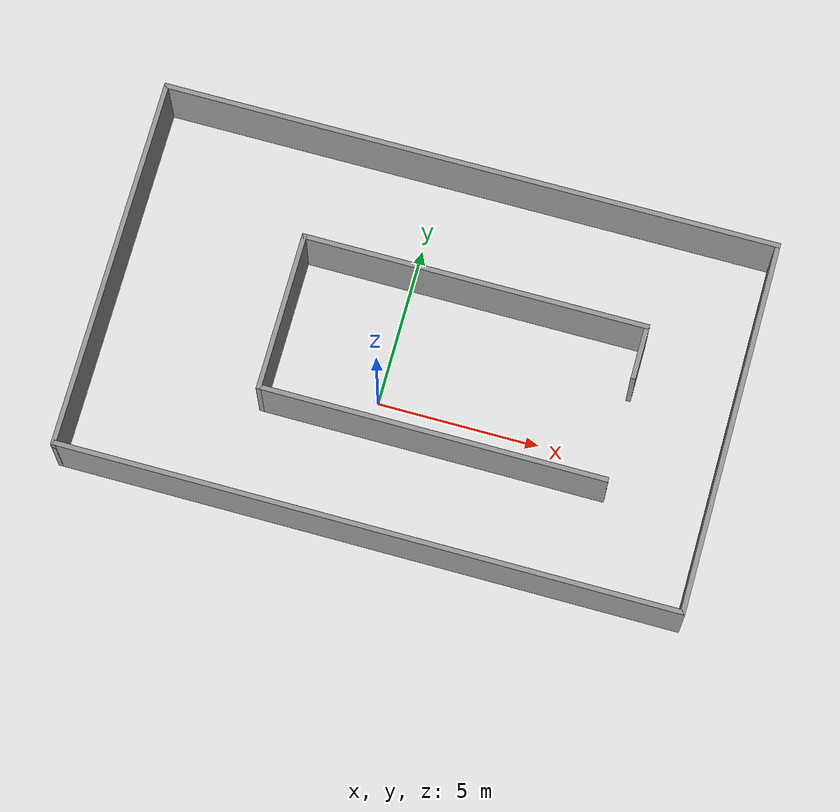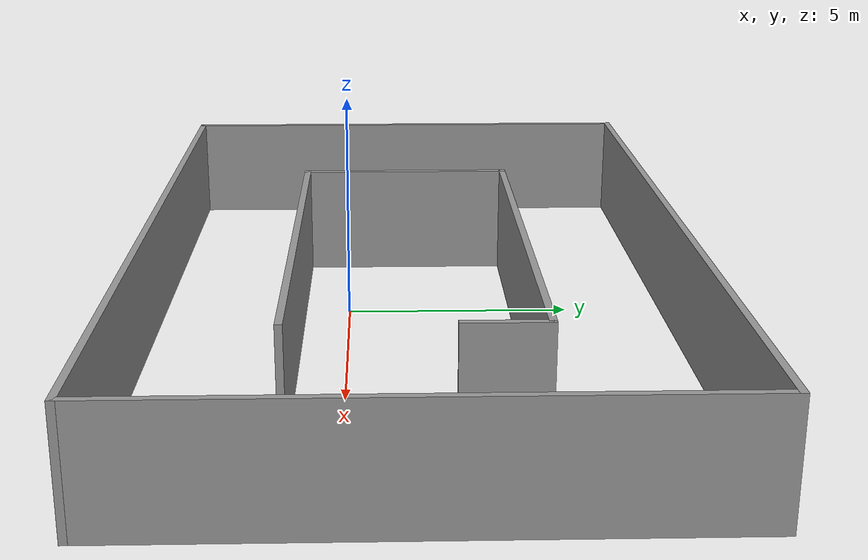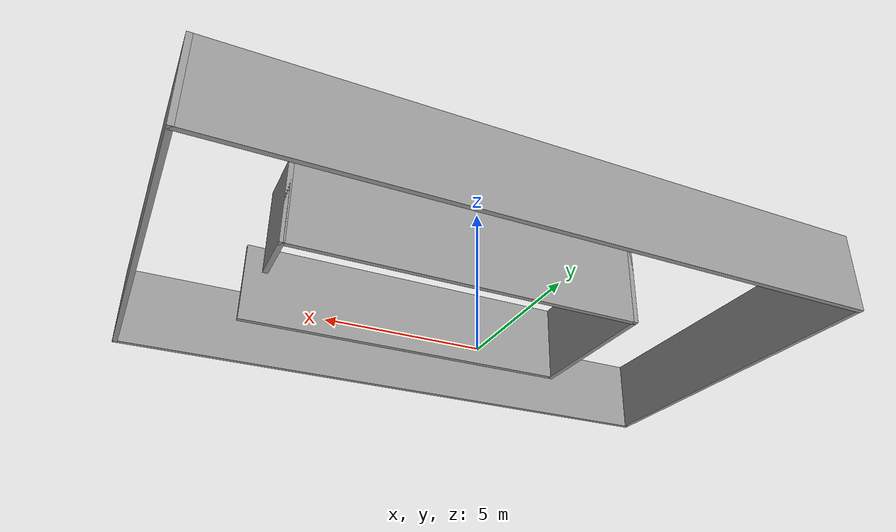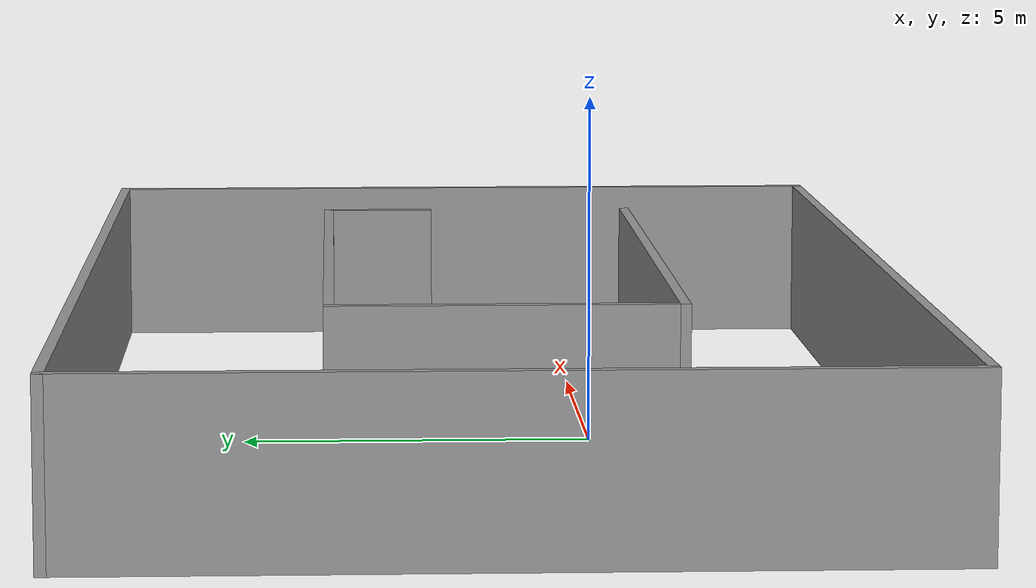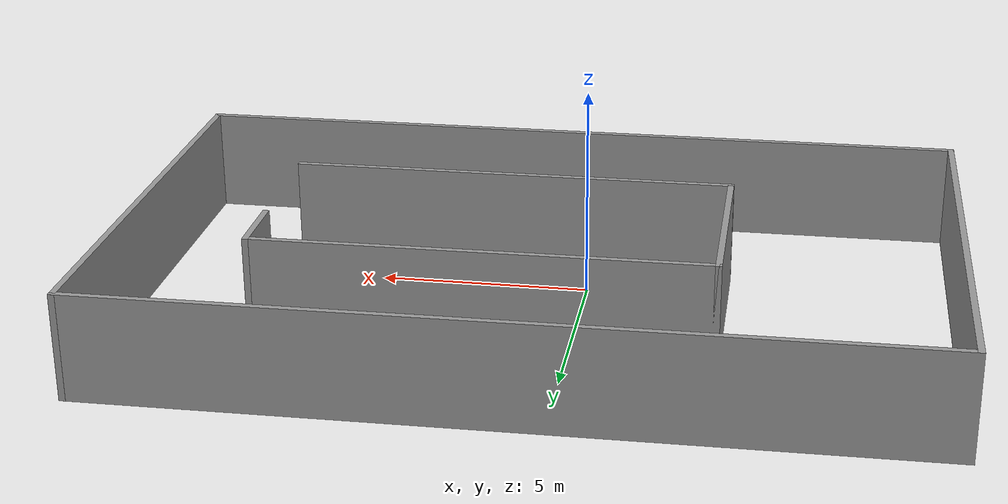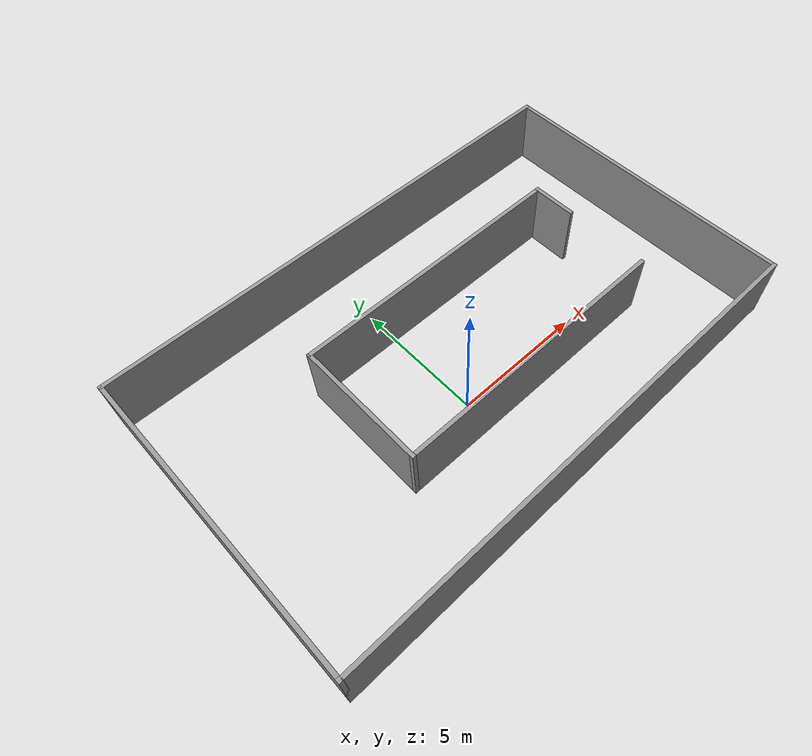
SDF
<?xml version='1.0'?>
<sdf version='1.7'>
  <model name='box_house_v2'>
    <pose>0.86 1.47 0 0 -0 0</pose>
    <link name='Wall_1'>
      <collision name='Wall_1_Collision'>
        <geometry>
          <box>
            <size>10.75 0.15 2.5</size>
          </box>
        </geometry>
        <pose>0 0 1.25 0 -0 0</pose>
      </collision>
      <visual name='Wall_1_Visual'>
        <pose>0 0 1.25 0 -0 0</pose>
        <geometry>
          <box>
            <size>10.75 0.15 2.5</size>
          </box>
        </geometry>
        <material>
          <script>
            <uri>file://media/materials/scripts/gazebo.material</uri>
            <name>Gazebo/Grey</name>
          </script>
          <ambient>1 1 1 1</ambient>
        </material>
        <meta>
          <layer>0</layer>
        </meta>
      </visual>
      <pose>1.1 2.3 0 0 -0 0</pose>
    </link>
    <link name='Wall_18'>
      <collision name='Wall_18_Collision'>
        <geometry>
          <box>
            <size>19.25 0.15 2.5</size>
          </box>
        </geometry>
        <pose>0 0 1.25 0 -0 0</pose>
      </collision>
      <visual name='Wall_18_Visual'>
        <pose>0 0 1.25 0 -0 0</pose>
        <geometry>
          <box>
            <size>19.25 0.15 2.5</size>
          </box>
        </geometry>
        <material>
          <script>
            <uri>file://media/materials/scripts/gazebo.material</uri>
            <name>Gazebo/Grey</name>
          </script>
          <ambient>1 1 1 1</ambient>
        </material>
        <meta>
          <layer>0</layer>
        </meta>
      </visual>
      <pose>-0 5.8 0 0 -0 3.14159</pose>
    </link>
    <link name='Wall_19'>
      <collision name='Wall_19_Collision'>
        <geometry>
          <box>
            <size>11.75 0.15 2.5</size>
          </box>
        </geometry>
        <pose>0 0 1.25 0 -0 0</pose>
      </collision>
      <visual name='Wall_19_Visual'>
        <pose>0 0 1.25 0 -0 0</pose>
        <geometry>
          <box>
            <size>11.75 0.15 2.5</size>
          </box>
        </geometry>
        <material>
          <script>
            <uri>file://media/materials/scripts/gazebo.material</uri>
            <name>Gazebo/Grey</name>
          </script>
          <ambient>1 1 1 1</ambient>
        </material>
        <meta>
          <layer>0</layer>
        </meta>
      </visual>
      <pose>-9.55 0 0 0 -0 -1.5708</pose>
    </link>
    <link name='Wall_20'>
      <collision name='Wall_20_Collision'>
        <geometry>
          <box>
            <size>19.25 0.15 2.5</size>
          </box>
        </geometry>
        <pose>0 0 1.25 0 -0 0</pose>
      </collision>
      <visual name='Wall_20_Visual'>
        <pose>0 0 1.25 0 -0 0</pose>
        <geometry>
          <box>
            <size>19.25 0.15 2.5</size>
          </box>
        </geometry>
        <material>
          <script>
            <uri>file://media/materials/scripts/gazebo.material</uri>
            <name>Gazebo/Grey</name>
          </script>
          <ambient>1 1 1 1</ambient>
        </material>
        <meta>
          <layer>0</layer>
        </meta>
      </visual>
      <pose>-0 -5.8 0 0 -0 0</pose>
    </link>
    <link name='Wall_22'>
      <collision name='Wall_22_Collision'>
        <geometry>
          <box>
            <size>11.75 0.15 2.5</size>
          </box>
        </geometry>
        <pose>0 0 1.25 0 -0 0</pose>
      </collision>
      <visual name='Wall_22_Visual'>
        <pose>0 0 1.25 0 -0 0</pose>
        <geometry>
          <box>
            <size>11.75 0.15 2.5</size>
          </box>
        </geometry>
        <material>
          <script>
            <uri>file://media/materials/scripts/gazebo.material</uri>
            <name>Gazebo/Grey</name>
          </script>
          <ambient>1 1 1 1</ambient>
        </material>
        <meta>
          <layer>0</layer>
        </meta>
      </visual>
      <pose>9.55 0 0 0 -0 -1.5708</pose>
    </link>
    <link name='Wall_3'>
      <collision name='Wall_3_Collision'>
        <geometry>
          <box>
            <size>10.75 0.15 2.5</size>
          </box>
        </geometry>
        <pose>0 0 1.25 0 -0 0</pose>
      </collision>
      <visual name='Wall_3_Visual'>
        <pose>0 0 1.25 0 -0 0</pose>
        <geometry>
          <box>
            <size>10.75 0.15 2.5</size>
          </box>
        </geometry>
        <material>
          <script>
            <uri>file://media/materials/scripts/gazebo.material</uri>
            <name>Gazebo/Grey</name>
          </script>
          <ambient>1 1 1 1</ambient>
        </material>
        <meta>
          <layer>0</layer>
        </meta>
      </visual>
      <pose>1.1 -2.55 0 0 -0 3.14159</pose>
    </link>
    <link name='Wall_5'>
      <collision name='Wall_5_Collision'>
        <geometry>
          <box>
            <size>5 0.15 2.5</size>
          </box>
        </geometry>
        <pose>0 0 1.25 0 -0 0</pose>
      </collision>
      <visual name='Wall_5_Visual'>
        <pose>0 0 1.25 0 -0 0</pose>
        <geometry>
          <box>
            <size>5 0.15 2.5</size>
          </box>
        </geometry>
        <material>
          <script>
            <uri>file://media/materials/scripts/gazebo.material</uri>
            <name>Gazebo/Grey</name>
          </script>
          <ambient>1 1 1 1</ambient>
        </material>
        <meta>
          <layer>0</layer>
        </meta>
      </visual>
      <pose>-4.2 -0.125 0 0 -0 1.5708</pose>
    </link>
    <link name='Wall_7'>
      <collision name='Wall_7_Collision'>
        <geometry>
          <box>
            <size>1.75 0.15 2.5</size>
          </box>
        </geometry>
        <pose>0 0 1.25 0 -0 0</pose>
      </collision>
      <visual name='Wall_7_Visual'>
        <pose>0 0 1.25 0 -0 0</pose>
        <geometry>
          <box>
            <size>1.75 0.15 2.5</size>
          </box>
        </geometry>
        <material>
          <script>
            <uri>file://media/materials/scripts/gazebo.material</uri>
            <name>Gazebo/Grey</name>
          </script>
          <ambient>1 1 1 1</ambient>
        </material>
        <meta>
          <layer>0</layer>
        </meta>
      </visual>
      <pose>6.4 1.5 0 0 -0 -1.5708</pose>
    </link>
    <static>1</static>
  </model>
</sdf>
